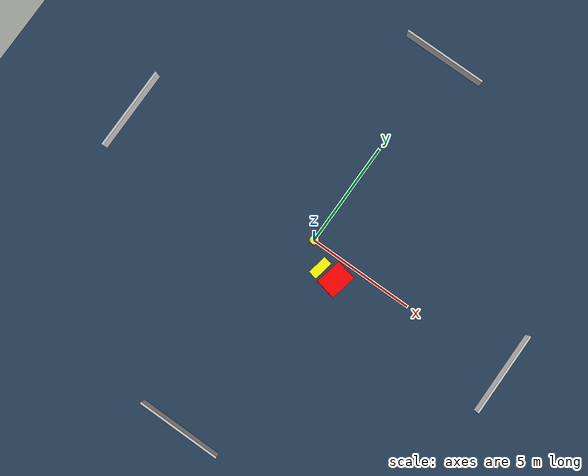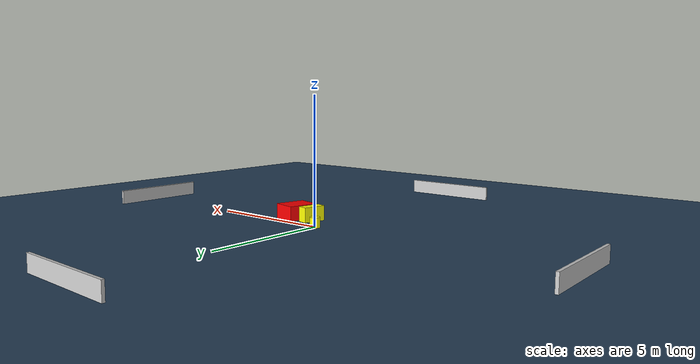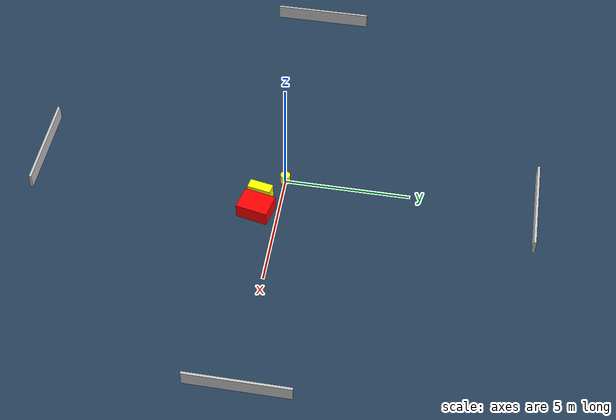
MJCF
<?xml version="1.0" ?>
<mujoco model="generated_environment">
  <option timestep="0.01" integrator="RK4" cone="elliptic"/>
  <default>
    <geom density="1"/>
  </default>
  <asset>
    <texture builtin="gradient" height="3072" name="skybox" rgb1="0.3 0.5 0.7" rgb2="0 0 0" type="skybox" width="512"/>
    <texture builtin="checker" height="300" name="groundplane" rgb1="0.2 0.3 0.4" rgb2="0.1 0.2 0.3" type="2d" width="300"/>
    <material name="groundplane" reflectance="0.2" texrepeat="5 5" texture="groundplane"/>
  </asset>
  <worldbody>
    <light dir="0 0 -1" directional="true" pos="0 0 1.5"/>
    <geom condim="3" friction="0.5 0.005 0.001" material="groundplane" name="floor" pos="0 0 0" size="0 0 0.05" type="plane"/>
    <body name="walls">
      <geom name="wall_1" condim="4" pos="-10.0 0.0 0.3" rgba="0.800000011920929 0.800000011920929 0.800000011920929 1.0" size="0.05 2.0 0.3" type="box"/>
      <geom name="wall_2" condim="4" pos="10.0 0.0 0.3" rgba="0.800000011920929 0.800000011920929 0.800000011920929 1.0" size="0.05 2.0 0.3" type="box"/>
      <geom name="wall_3" condim="4" pos="0.0 -10.0 0.3" rgba="0.800000011920929 0.800000011920929 0.800000011920929 1.0" size="2.0 0.05 0.3" type="box"/>
      <geom name="wall_4" condim="4" pos="0.0 10.0 0.3" rgba="0.800000011920929 0.800000011920929 0.800000011920929 1.0" size="2.0 0.05 0.3" type="box"/>
    </body>
    <body name="robot">
      <joint name="joint_x" type="slide" pos="0 0 0" axis="1 0 0"/>
      <joint name="joint_y" type="slide" pos="0 0 0" axis="0 1 0"/>
      <geom name="robot" type="cylinder" pos="0.0 0.0 0.2" size="0.2 0.2 0.0" mass="5.0" friction="1.0 0.005 0.0001" condim="4" rgba="1.0 1.0 0.0 1.0"/>
    </body>
    <body name="obstacle_1_movable">
      <geom name="obstacle_1_movable" condim="4" pos="0.9218064159295793 -0.8515606312893261 0.3" euler="0 0 79.05886062184226" friction="0.0 0.005 0.001" rgba="1.0 1.0 0.0 1.0" size="0.47308905669739637 0.20805702848069663 0.3" type="box" mass="0.1"/>
      <joint type="free"/>
    </body>
    <body name="obstacle_2_static">
      <geom name="obstacle_2_static" condim="4" pos="1.7660505564317988 -0.8770804974230598 0.3" euler="0 0 347.87368535527975" friction="0.0 0.005 0.001" rgba="1.0 0.0 0.0 1.0" size="0.4933645616518398 0.6358497613385246 0.3" type="box"/>
    </body>
  </worldbody>
  <actuator>
    <motor name="actuator_x" joint="joint_x" gear="1" ctrlrange="-1 1"/>
    <motor name="actuator_y" joint="joint_y" gear="1" ctrlrange="-1 1"/>
  </actuator>
</mujoco>
